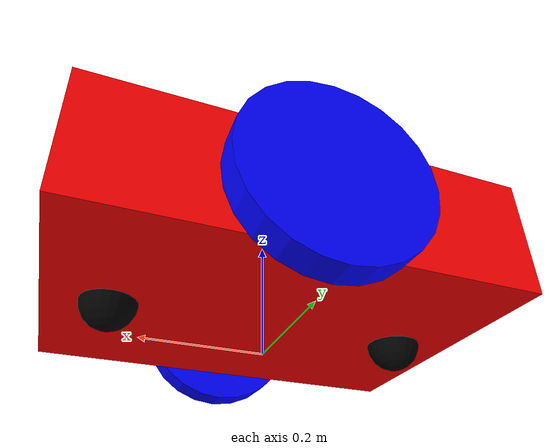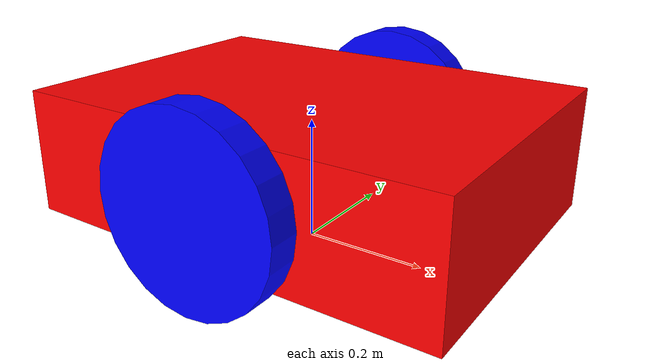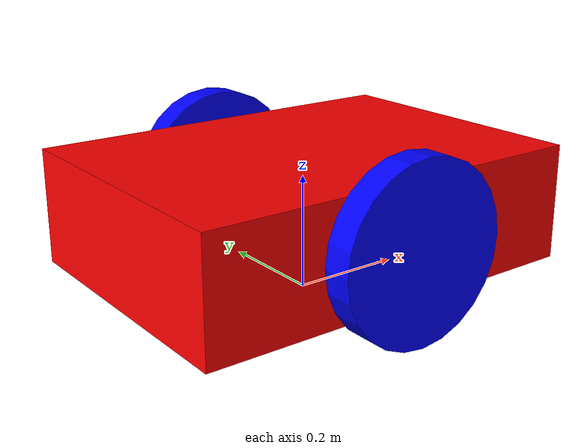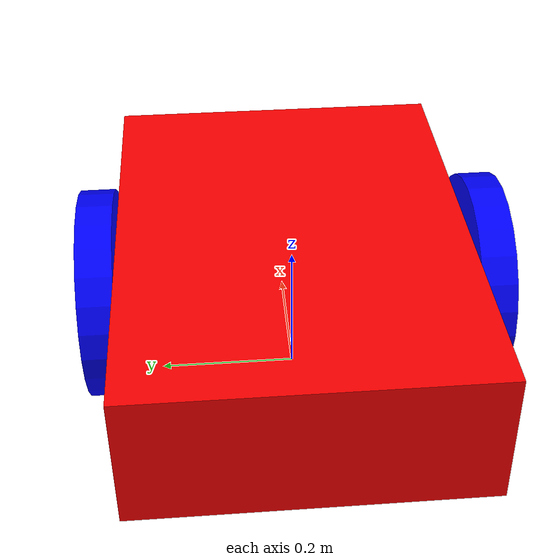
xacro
<?xml version="1.0" ?>
<robot name="bot" xmlns:xacro="http://www.ros.org/wiki/xacro">

<!-- base footprint is below the base link and is a projection of the base link unto the ground frame
it is used to determine the robot's position relative to the ground and nearby obstacles-->
    <link name="base_footprint"/>

<!-- creating the robot chasis -->
<!-- base link is the center point of the robot's base -->
    <link name="base_link">
    <inertial>
        <origin xyz="0 0 0" rpy="0 0 0"/>
        <mass value="5.0"/>
        <inertia ixx="0.1" ixy="0.0" ixz="0.0" iyy="0.1" iyz="0.0" izz="0.1"/>
    </inertial>

    <!--contains the size(geometry) of the robot  -->
    <visual>
        <origin xyz="0.0 0.0 0.0" rpy="0.0 0.0 0.0"/>
        <geometry>
            <box size="0.7 0.5 0.2"/>
        </geometry>
        <material name="red">
        <!-- rgba represents red, green, blue, and trasnparency -->
            <color rgba="1.0 0.0 0.0 1.0"/>
        </material>
    </visual>

    <!-- collision tells the physics engine the properties of the bot parts(stiffness,...) -->
    <collision>
        <origin xyz="0.0 0.0 0.0" rpy="0.0 0.0 0.0"/>
        <geometry>
            <box size="0.7 0.5 0.2"/>
        </geometry>
    </collision>
    </link>

    <joint name="base_joint" type="fixed">
        <origin xyz="0.0 0.0 0.15" rpy="0.0 0.0 0.0"/>
        <parent link="base_footprint"/>
        <child link="base_link"/>
    </joint>

<!-- Right Wheel -->

<link name="right_wheel_link">
  <inertial>
    <origin xyz="0 0 0" rpy="0 0 0"/>
    <mass value="1.0"/>
    <inertia ixx="0.01" ixy="0.0" ixz="0.0" iyy="0.01" iyz="0.0" izz="0.01"/>
  </inertial>
  <visual>
    <origin xyz="0.0 0.0 0.0" rpy="0.0 0.0 0.0"/>
    <geometry>
      <cylinder radius="0.15" length="0.05"/>
    </geometry>
    <material name="blue">
      <color rgba="0.0 0.0 1.0 1.0"/>
    </material>
  </visual>
  <collision>
    <origin xyz="0.0 0.0 0.0" rpy="0.0 0.0 0.0"/>
    <geometry>
      <cylinder radius="0.15" length="0.05"/>
    </geometry>
  </collision>
</link>

<joint name="right_wheel_joint" type="continuous">
  <origin xyz="0.0 -0.275 0.0" rpy="1.57 0.0 0.0"/>
  <parent link="base_link"/>
  <child link="right_wheel_link"/>
  <axis xyz="0.0 0.0 -1.0"/>
</joint>

<!-- Left Wheel -->
<link name="left_wheel_link">
  <inertial>
    <origin xyz="0 0 0" rpy="0 0 0"/>
    <mass value="1.0"/>
    <inertia ixx="0.01" ixy="0.0" ixz="0.0" iyy="0.01" iyz="0.0" izz="0.01"/>
  </inertial>
  <visual>
    <origin xyz="0.0 0.0 0.0" rpy="0.0 0.0 0.0"/>
    <geometry>
      <cylinder radius="0.15" length="0.05"/>
    </geometry>
    <material name="blue">
      <color rgba="0.0 0.0 1.0 1.0"/>
    </material>
  </visual>
  <collision>
    <origin xyz="0.0 0.0 0.0" rpy="0.0 0.0 0.0"/>
    <geometry>
      <cylinder radius="0.15" length="0.05"/>
    </geometry>
  </collision>
</link>

<joint name="left_wheel_joint" type="continuous">
  <origin xyz="0.0 0.275 0.0" rpy="1.57 0.0 0.0"/>
  <parent link="base_link"/>
  <child link="left_wheel_link"/>
  <axis xyz="0.0 0.0 -1.0"/>
</joint>

<!-- Front Castor -->
<link name="front_castor_link">
  <inertial>
    <origin xyz="0 0 0" rpy="0 0 0"/>
    <mass value="0.5"/>
    <inertia ixx="0.005" ixy="0.0" ixz="0.0" iyy="0.005" iyz="0.0" izz="0.005"/>
  </inertial>
  <visual>
    <origin xyz="0.0 0.0 0.0" rpy="0.0 0.0 0.0"/>
    <geometry>
      <sphere radius="0.045"/>
    </geometry>
    <material name="black">
      <color rgba="0.0 0.0 0.0 1.0"/>
    </material>
  </visual>
  <collision>
    <origin xyz="0.0 0.0 0.0" rpy="0.0 0.0 0.0"/>
    <geometry>
      <sphere radius="0.045"/>
    </geometry>
  </collision>
</link>

<joint name="front_castor_joint" type="fixed">
  <origin xyz="0.25 0.0 -0.1" rpy="0.0 0.0 0.0"/>
  <parent link="base_link"/>
  <child link="front_castor_link"/>
</joint>

<!-- Rear Castor -->
<link name="back_castor_link">
  <inertial>
    <origin xyz="0 0 0" rpy="0 0 0"/>
    <mass value="0.5"/>
    <inertia ixx="0.005" ixy="0.0" ixz="0.0" iyy="0.005" iyz="0.0" izz="0.005"/>
  </inertial>
  <visual>
    <origin xyz="0.0 0.0 0.0" rpy="0.0 0.0 0.0"/>
    <geometry>
      <sphere radius="0.045"/>
    </geometry>
    <material name="black">
      <color rgba="0.0 0.0 0.0 1.0"/>
    </material>
  </visual>
  <collision>
    <origin xyz="0.0 0.0 0.0" rpy="0.0 0.0 0.0"/>
    <geometry>
      <sphere radius="0.045"/>
    </geometry>
  </collision>
</link>

<joint name="back_castor_joint" type="fixed">
  <origin xyz="-0.25 0.0 -0.1" rpy="0.0 0.0 0.0"/>
  <parent link="base_link"/>
  <child link="back_castor_link"/>
</joint>

<!-- use sphere instead of cylinder in collision for wheels because it
has jut 1 point of contact and therefore less friction-->

<!-- a xacro file provides modularity over a .urdf file, it allows us to break the bot into segments
it also allows us to create a function in urdf -->
</robot>
